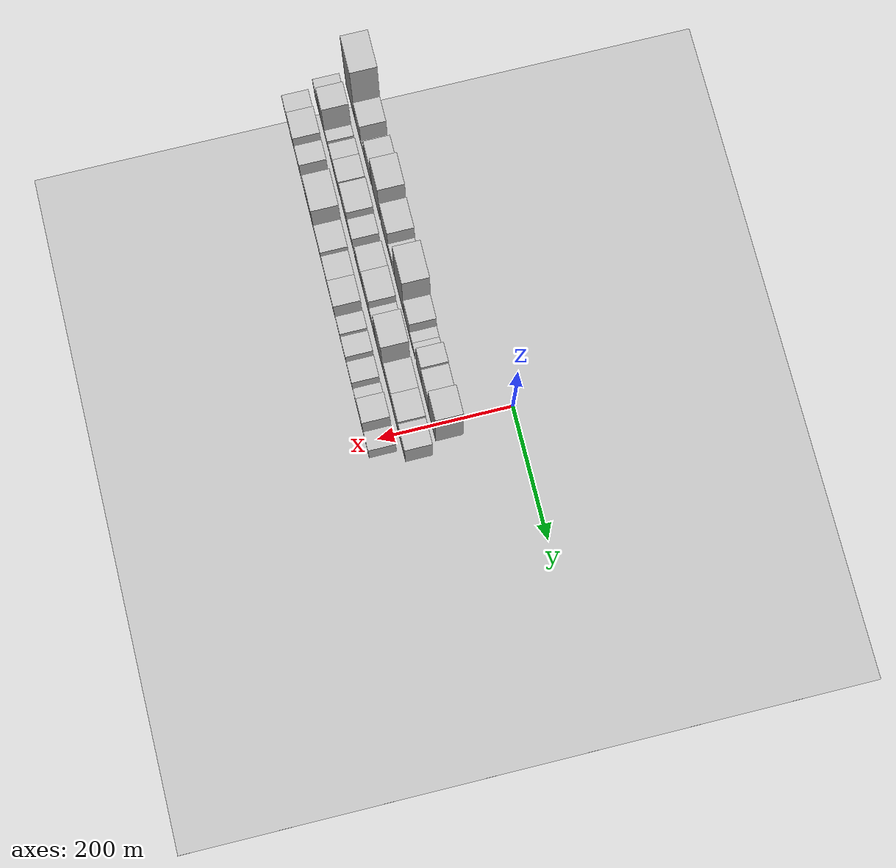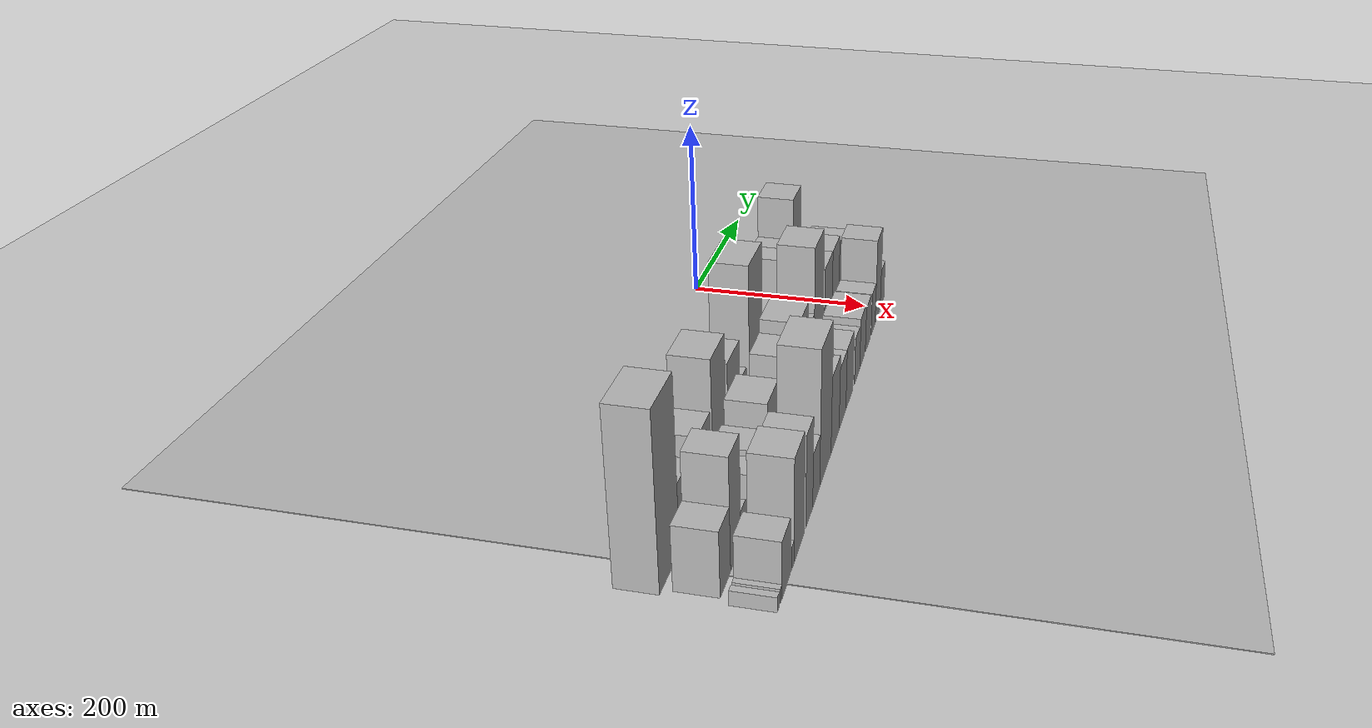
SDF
<sdf version="1.6">
 <world name="default">
  <include><name>ground_plane_1</name><uri>model://HANNAS_ground_plane</uri></include>
  <include>
   <name>ground_plane_2</name>
   <uri>model://HANNAS_ground_plane</uri>
   <pose>100 0 0  0 0 0</pose>
  </include>
  <model name="building_1">
   <static>1</static>
   <pose>100.0000 -507.1463 0 0.000000 0.000000 0.000000</pose>
   <link name="link">
    <pose>0 0 88.50 0 0 0</pose>
    <collision name="collision"><geometry><box><size>40.0000 57.7073 177.0000</size></box></geometry></collision>
    <visual name="visual">
     <cast_shadows>0</cast_shadows>
     <geometry><box><size>40.0000 57.7073 177.0000</size></box></geometry>
     <material>
      <script>
       <uri>model://HANNAS_wall/materials/scripts</uri>
       <uri>model://HANNAS_wall/materials/textures</uri>
       <name>vrc/HANNAS_wall</name>
      </script>
     </material>
    </visual>
   </link>
  </model>
  <model name="building_2">
   <static>1</static>
   <pose>100.0000 -458.8151 0 0.000000 0.000000 0.000000</pose>
   <link name="link">
    <pose>0 0 34.50 0 0 0</pose>
    <collision name="collision"><geometry><box><size>40.0000 38.9551 69.0000</size></box></geometry></collision>
    <visual name="visual">
     <cast_shadows>0</cast_shadows>
     <geometry><box><size>40.0000 38.9551 69.0000</size></box></geometry>
     <material>
      <script>
       <uri>model://HANNAS_wall/materials/scripts</uri>
       <uri>model://HANNAS_wall/materials/textures</uri>
       <name>vrc/HANNAS_wall</name>
      </script>
     </material>
    </visual>
   </link>
  </model>
  <model name="building_3">
   <static>1</static>
   <pose>100.0000 -436.0091 0 0.000000 0.000000 0.000000</pose>
   <link name="link">
    <pose>0 0 7.50 0 0 0</pose>
    <collision name="collision"><geometry><box><size>40.0000 6.6569 15.0000</size></box></geometry></collision>
    <visual name="visual">
     <cast_shadows>0</cast_shadows>
     <geometry><box><size>40.0000 6.6569 15.0000</size></box></geometry>
     <material>
      <script>
       <uri>model://HANNAS_wall/materials/scripts</uri>
       <uri>model://HANNAS_wall/materials/textures</uri>
       <name>vrc/HANNAS_wall</name>
      </script>
     </material>
    </visual>
   </link>
  </model>
  <model name="building_4">
   <static>1</static>
   <pose>100.0000 -427.6124 0 0.000000 0.000000 0.000000</pose>
   <link name="link">
    <pose>0 0 12.00 0 0 0</pose>
    <collision name="collision"><geometry><box><size>40.0000 10.1366 24.0000</size></box></geometry></collision>
    <visual name="visual">
     <cast_shadows>0</cast_shadows>
     <geometry><box><size>40.0000 10.1366 24.0000</size></box></geometry>
     <material>
      <script>
       <uri>model://HANNAS_wall/materials/scripts</uri>
       <uri>model://HANNAS_wall/materials/textures</uri>
       <name>vrc/HANNAS_wall</name>
      </script>
     </material>
    </visual>
   </link>
  </model>
  <model name="building_5">
   <static>1</static>
   <pose>100.0000 -418.8842 0 0.000000 0.000000 0.000000</pose>
   <link name="link">
    <pose>0 0 9.00 0 0 0</pose>
    <collision name="collision"><geometry><box><size>40.0000 7.3197 18.0000</size></box></geometry></collision>
    <visual name="visual">
     <cast_shadows>0</cast_shadows>
     <geometry><box><size>40.0000 7.3197 18.0000</size></box></geometry>
     <material>
      <script>
       <uri>model://HANNAS_wall/materials/scripts</uri>
       <uri>model://HANNAS_wall/materials/textures</uri>
       <name>vrc/HANNAS_wall</name>
      </script>
     </material>
    </visual>
   </link>
  </model>
  <model name="building_6">
   <static>1</static>
   <pose>100.0000 -394.3049 0 0.000000 0.000000 0.000000</pose>
   <link name="link">
    <pose>0 0 37.50 0 0 0</pose>
    <collision name="collision"><geometry><box><size>40.0000 41.8389 75.0000</size></box></geometry></collision>
    <visual name="visual">
     <cast_shadows>0</cast_shadows>
     <geometry><box><size>40.0000 41.8389 75.0000</size></box></geometry>
     <material>
      <script>
       <uri>model://HANNAS_wall/materials/scripts</uri>
       <uri>model://HANNAS_wall/materials/textures</uri>
       <name>vrc/HANNAS_wall</name>
      </script>
     </material>
    </visual>
   </link>
  </model>
  <model name="building_7">
   <static>1</static>
   <pose>100.0000 -344.0526 0 0.000000 0.000000 0.000000</pose>
   <link name="link">
    <pose>0 0 63.00 0 0 0</pose>
    <collision name="collision"><geometry><box><size>40.0000 48.6657 126.0000</size></box></geometry></collision>
    <visual name="visual">
     <cast_shadows>0</cast_shadows>
     <geometry><box><size>40.0000 48.6657 126.0000</size></box></geometry>
     <material>
      <script>
       <uri>model://HANNAS_wall/materials/scripts</uri>
       <uri>model://HANNAS_wall/materials/textures</uri>
       <name>vrc/HANNAS_wall</name>
      </script>
     </material>
    </visual>
   </link>
  </model>
  <model name="building_8">
   <static>1</static>
   <pose>100.0000 -289.3071 0 0.000000 0.000000 0.000000</pose>
   <link name="link">
    <pose>0 0 45.00 0 0 0</pose>
    <collision name="collision"><geometry><box><size>40.0000 46.8253 90.0000</size></box></geometry></collision>
    <visual name="visual">
     <cast_shadows>0</cast_shadows>
     <geometry><box><size>40.0000 46.8253 90.0000</size></box></geometry>
     <material>
      <script>
       <uri>model://HANNAS_wall/materials/scripts</uri>
       <uri>model://HANNAS_wall/materials/textures</uri>
       <name>vrc/HANNAS_wall</name>
      </script>
     </material>
    </visual>
   </link>
  </model>
  <model name="building_9">
   <static>1</static>
   <pose>100.0000 -252.6126 0 0.000000 0.000000 0.000000</pose>
   <link name="link">
    <pose>0 0 22.50 0 0 0</pose>
    <collision name="collision"><geometry><box><size>40.0000 26.5637 45.0000</size></box></geometry></collision>
    <visual name="visual">
     <cast_shadows>0</cast_shadows>
     <geometry><box><size>40.0000 26.5637 45.0000</size></box></geometry>
     <material>
      <script>
       <uri>model://HANNAS_wall/materials/scripts</uri>
       <uri>model://HANNAS_wall/materials/textures</uri>
       <name>vrc/HANNAS_wall</name>
      </script>
     </material>
    </visual>
   </link>
  </model>
  <model name="building_10">
   <static>1</static>
   <pose>100.0000 -235.2382 0 0.000000 0.000000 0.000000</pose>
   <link name="link">
    <pose>0 0 9.00 0 0 0</pose>
    <collision name="collision"><geometry><box><size>40.0000 8.1850 18.0000</size></box></geometry></collision>
    <visual name="visual">
     <cast_shadows>0</cast_shadows>
     <geometry><box><size>40.0000 8.1850 18.0000</size></box></geometry>
     <material>
      <script>
       <uri>model://HANNAS_wall/materials/scripts</uri>
       <uri>model://HANNAS_wall/materials/textures</uri>
       <name>vrc/HANNAS_wall</name>
      </script>
     </material>
    </visual>
   </link>
  </model>
  <model name="building_11">
   <static>1</static>
   <pose>100.0000 -199.3745 0 0.000000 0.000000 0.000000</pose>
   <link name="link">
    <pose>0 0 75.00 0 0 0</pose>
    <collision name="collision"><geometry><box><size>40.0000 55.5425 150.0000</size></box></geometry></collision>
    <visual name="visual">
     <cast_shadows>0</cast_shadows>
     <geometry><box><size>40.0000 55.5425 150.0000</size></box></geometry>
     <material>
      <script>
       <uri>model://HANNAS_wall/materials/scripts</uri>
       <uri>model://HANNAS_wall/materials/textures</uri>
       <name>vrc/HANNAS_wall</name>
      </script>
     </material>
    </visual>
   </link>
  </model>
  <model name="building_12">
   <static>1</static>
   <pose>100.0000 -153.1089 0 0.000000 0.000000 0.000000</pose>
   <link name="link">
    <pose>0 0 34.50 0 0 0</pose>
    <collision name="collision"><geometry><box><size>40.0000 36.9888 69.0000</size></box></geometry></collision>
    <visual name="visual">
     <cast_shadows>0</cast_shadows>
     <geometry><box><size>40.0000 36.9888 69.0000</size></box></geometry>
     <material>
      <script>
       <uri>model://HANNAS_wall/materials/scripts</uri>
       <uri>model://HANNAS_wall/materials/textures</uri>
       <name>vrc/HANNAS_wall</name>
      </script>
     </material>
    </visual>
   </link>
  </model>
  <model name="building_13">
   <static>1</static>
   <pose>100.0000 -126.3114 0 0.000000 0.000000 0.000000</pose>
   <link name="link">
    <pose>0 0 15.00 0 0 0</pose>
    <collision name="collision"><geometry><box><size>40.0000 16.6062 30.0000</size></box></geometry></collision>
    <visual name="visual">
     <cast_shadows>0</cast_shadows>
     <geometry><box><size>40.0000 16.6062 30.0000</size></box></geometry>
     <material>
      <script>
       <uri>model://HANNAS_wall/materials/scripts</uri>
       <uri>model://HANNAS_wall/materials/textures</uri>
       <name>vrc/HANNAS_wall</name>
      </script>
     </material>
    </visual>
   </link>
  </model>
  <model name="building_14">
   <static>1</static>
   <pose>100.0000 -110.0389 0 0.000000 0.000000 0.000000</pose>
   <link name="link">
    <pose>0 0 15.00 0 0 0</pose>
    <collision name="collision"><geometry><box><size>40.0000 15.9388 30.0000</size></box></geometry></collision>
    <visual name="visual">
     <cast_shadows>0</cast_shadows>
     <geometry><box><size>40.0000 15.9388 30.0000</size></box></geometry>
     <material>
      <script>
       <uri>model://HANNAS_wall/materials/scripts</uri>
       <uri>model://HANNAS_wall/materials/textures</uri>
       <name>vrc/HANNAS_wall</name>
      </script>
     </material>
    </visual>
   </link>
  </model>
  <model name="building_15">
   <static>1</static>
   <pose>100.0000 -78.3775 0 0.000000 0.000000 0.000000</pose>
   <link name="link">
    <pose>0 0 46.50 0 0 0</pose>
    <collision name="collision"><geometry><box><size>40.0000 29.3840 93.0000</size></box></geometry></collision>
    <visual name="visual">
     <cast_shadows>0</cast_shadows>
     <geometry><box><size>40.0000 29.3840 93.0000</size></box></geometry>
     <material>
      <script>
       <uri>model://HANNAS_wall/materials/scripts</uri>
       <uri>model://HANNAS_wall/materials/textures</uri>
       <name>vrc/HANNAS_wall</name>
      </script>
     </material>
    </visual>
   </link>
  </model>
  <model name="building_16">
   <static>1</static>
   <pose>100.0000 -41.8981 0 0.000000 0.000000 0.000000</pose>
   <link name="link">
    <pose>0 0 42.00 0 0 0</pose>
    <collision name="collision"><geometry><box><size>40.0000 43.5748 84.0000</size></box></geometry></collision>
    <visual name="visual">
     <cast_shadows>0</cast_shadows>
     <geometry><box><size>40.0000 43.5748 84.0000</size></box></geometry>
     <material>
      <script>
       <uri>model://HANNAS_wall/materials/scripts</uri>
       <uri>model://HANNAS_wall/materials/textures</uri>
       <name>vrc/HANNAS_wall</name>
      </script>
     </material>
    </visual>
   </link>
  </model>
  <model name="building_17">
   <static>1</static>
   <pose>100.0000 1.3072 0 0.000000 0.000000 0.000000</pose>
   <link name="link">
    <pose>0 0 66.00 0 0 0</pose>
    <collision name="collision"><geometry><box><size>40.0000 42.8359 132.0000</size></box></geometry></collision>
    <visual name="visual">
     <cast_shadows>0</cast_shadows>
     <geometry><box><size>40.0000 42.8359 132.0000</size></box></geometry>
     <material>
      <script>
       <uri>model://HANNAS_wall/materials/scripts</uri>
       <uri>model://HANNAS_wall/materials/textures</uri>
       <name>vrc/HANNAS_wall</name>
      </script>
     </material>
    </visual>
   </link>
  </model>
  <model name="building_34">
   <static>1</static>
   <pose>149.0000 -512.0052 0 0.000000 0.000000 0.000000</pose>
   <link name="link">
    <pose>0 0 33.00 0 0 0</pose>
    <collision name="collision"><geometry><box><size>40.0000 33.9897 66.0000</size></box></geometry></collision>
    <visual name="visual">
     <cast_shadows>0</cast_shadows>
     <geometry><box><size>40.0000 33.9897 66.0000</size></box></geometry>
     <material>
      <script>
       <uri>model://HANNAS_wall/materials/scripts</uri>
       <uri>model://HANNAS_wall/materials/textures</uri>
       <name>vrc/HANNAS_wall</name>
      </script>
     </material>
    </visual>
   </link>
  </model>
  <model name="building_35">
   <static>1</static>
   <pose>149.0000 -477.4012 0 0.000000 0.000000 0.000000</pose>
   <link name="link">
    <pose>0 0 57.00 0 0 0</pose>
    <collision name="collision"><geometry><box><size>40.0000 35.2183 114.0000</size></box></geometry></collision>
    <visual name="visual">
     <cast_shadows>0</cast_shadows>
     <geometry><box><size>40.0000 35.2183 114.0000</size></box></geometry>
     <material>
      <script>
       <uri>model://HANNAS_wall/materials/scripts</uri>
       <uri>model://HANNAS_wall/materials/textures</uri>
       <name>vrc/HANNAS_wall</name>
      </script>
     </material>
    </visual>
   </link>
  </model>
  <model name="building_36">
   <static>1</static>
   <pose>149.0000 -450.6664 0 0.000000 0.000000 0.000000</pose>
   <link name="link">
    <pose>0 0 18.00 0 0 0</pose>
    <collision name="collision"><geometry><box><size>40.0000 18.2512 36.0000</size></box></geometry></collision>
    <visual name="visual">
     <cast_shadows>0</cast_shadows>
     <geometry><box><size>40.0000 18.2512 36.0000</size></box></geometry>
     <material>
      <script>
       <uri>model://HANNAS_wall/materials/scripts</uri>
       <uri>model://HANNAS_wall/materials/textures</uri>
       <name>vrc/HANNAS_wall</name>
      </script>
     </material>
    </visual>
   </link>
  </model>
  <model name="building_37">
   <static>1</static>
   <pose>149.0000 -417.6614 0 0.000000 0.000000 0.000000</pose>
   <link name="link">
    <pose>0 0 27.00 0 0 0</pose>
    <collision name="collision"><geometry><box><size>40.0000 27.7589 54.0000</size></box></geometry></collision>
    <visual name="visual">
     <cast_shadows>0</cast_shadows>
     <geometry><box><size>40.0000 27.7589 54.0000</size></box></geometry>
     <material>
      <script>
       <uri>model://HANNAS_wall/materials/scripts</uri>
       <uri>model://HANNAS_wall/materials/textures</uri>
       <name>vrc/HANNAS_wall</name>
      </script>
     </material>
    </visual>
   </link>
  </model>
  <model name="building_38">
   <static>1</static>
   <pose>149.0000 -385.9772 0 0.000000 0.000000 0.000000</pose>
   <link name="link">
    <pose>0 0 30.00 0 0 0</pose>
    <collision name="collision"><geometry><box><size>40.0000 35.6096 60.0000</size></box></geometry></collision>
    <visual name="visual">
     <cast_shadows>0</cast_shadows>
     <geometry><box><size>40.0000 35.6096 60.0000</size></box></geometry>
     <material>
      <script>
       <uri>model://HANNAS_wall/materials/scripts</uri>
       <uri>model://HANNAS_wall/materials/textures</uri>
       <name>vrc/HANNAS_wall</name>
      </script>
     </material>
    </visual>
   </link>
  </model>
  <model name="building_39">
   <static>1</static>
   <pose>149.0000 -336.1917 0 0.000000 0.000000 0.000000</pose>
   <link name="link">
    <pose>0 0 40.50 0 0 0</pose>
    <collision name="collision"><geometry><box><size>40.0000 45.9613 81.0000</size></box></geometry></collision>
    <visual name="visual">
     <cast_shadows>0</cast_shadows>
     <geometry><box><size>40.0000 45.9613 81.0000</size></box></geometry>
     <material>
      <script>
       <uri>model://HANNAS_wall/materials/scripts</uri>
       <uri>model://HANNAS_wall/materials/textures</uri>
       <name>vrc/HANNAS_wall</name>
      </script>
     </material>
    </visual>
   </link>
  </model>
  <model name="building_40">
   <static>1</static>
   <pose>149.0000 -297.3980 0 0.000000 0.000000 0.000000</pose>
   <link name="link">
    <pose>0 0 27.00 0 0 0</pose>
    <collision name="collision"><geometry><box><size>40.0000 31.6261 54.0000</size></box></geometry></collision>
    <visual name="visual">
     <cast_shadows>0</cast_shadows>
     <geometry><box><size>40.0000 31.6261 54.0000</size></box></geometry>
     <material>
      <script>
       <uri>model://HANNAS_wall/materials/scripts</uri>
       <uri>model://HANNAS_wall/materials/textures</uri>
       <name>vrc/HANNAS_wall</name>
      </script>
     </material>
    </visual>
   </link>
  </model>
  <model name="building_41">
   <static>1</static>
   <pose>149.0000 -269.5766 0 0.000000 0.000000 0.000000</pose>
   <link name="link">
    <pose>0 0 13.50 0 0 0</pose>
    <collision name="collision"><geometry><box><size>40.0000 12.0168 27.0000</size></box></geometry></collision>
    <visual name="visual">
     <cast_shadows>0</cast_shadows>
     <geometry><box><size>40.0000 12.0168 27.0000</size></box></geometry>
     <material>
      <script>
       <uri>model://HANNAS_wall/materials/scripts</uri>
       <uri>model://HANNAS_wall/materials/textures</uri>
       <name>vrc/HANNAS_wall</name>
      </script>
     </material>
    </visual>
   </link>
  </model>
  <model name="building_42">
   <static>1</static>
   <pose>149.0000 -242.2615 0 0.000000 0.000000 0.000000</pose>
   <link name="link">
    <pose>0 0 37.50 0 0 0</pose>
    <collision name="collision"><geometry><box><size>40.0000 42.6134 75.0000</size></box></geometry></collision>
    <visual name="visual">
     <cast_shadows>0</cast_shadows>
     <geometry><box><size>40.0000 42.6134 75.0000</size></box></geometry>
     <material>
      <script>
       <uri>model://HANNAS_wall/materials/scripts</uri>
       <uri>model://HANNAS_wall/materials/textures</uri>
       <name>vrc/HANNAS_wall</name>
      </script>
     </material>
    </visual>
   </link>
  </model>
  <model name="building_43">
   <static>1</static>
   <pose>149.0000 -197.9047 0 0.000000 0.000000 0.000000</pose>
   <link name="link">
    <pose>0 0 45.00 0 0 0</pose>
    <collision name="collision"><geometry><box><size>40.0000 46.1002 90.0000</size></box></geometry></collision>
    <visual name="visual">
     <cast_shadows>0</cast_shadows>
     <geometry><box><size>40.0000 46.1002 90.0000</size></box></geometry>
     <material>
      <script>
       <uri>model://HANNAS_wall/materials/scripts</uri>
       <uri>model://HANNAS_wall/materials/textures</uri>
       <name>vrc/HANNAS_wall</name>
      </script>
     </material>
    </visual>
   </link>
  </model>
  <model name="building_44">
   <static>1</static>
   <pose>149.0000 -158.5777 0 0.000000 0.000000 0.000000</pose>
   <link name="link">
    <pose>0 0 30.00 0 0 0</pose>
    <collision name="collision"><geometry><box><size>40.0000 32.5539 60.0000</size></box></geometry></collision>
    <visual name="visual">
     <cast_shadows>0</cast_shadows>
     <geometry><box><size>40.0000 32.5539 60.0000</size></box></geometry>
     <material>
      <script>
       <uri>model://HANNAS_wall/materials/scripts</uri>
       <uri>model://HANNAS_wall/materials/textures</uri>
       <name>vrc/HANNAS_wall</name>
      </script>
     </material>
    </visual>
   </link>
  </model>
  <model name="building_45">
   <static>1</static>
   <pose>149.0000 -118.1655 0 0.000000 0.000000 0.000000</pose>
   <link name="link">
    <pose>0 0 67.50 0 0 0</pose>
    <collision name="collision"><geometry><box><size>40.0000 48.2704 135.0000</size></box></geometry></collision>
    <visual name="visual">
     <cast_shadows>0</cast_shadows>
     <geometry><box><size>40.0000 48.2704 135.0000</size></box></geometry>
     <material>
      <script>
       <uri>model://HANNAS_wall/materials/scripts</uri>
       <uri>model://HANNAS_wall/materials/textures</uri>
       <name>vrc/HANNAS_wall</name>
      </script>
     </material>
    </visual>
   </link>
  </model>
  <model name="building_46">
   <static>1</static>
   <pose>149.0000 -89.8084 0 0.000000 0.000000 0.000000</pose>
   <link name="link">
    <pose>0 0 9.00 0 0 0</pose>
    <collision name="collision"><geometry><box><size>40.0000 8.4438 18.0000</size></box></geometry></collision>
    <visual name="visual">
     <cast_shadows>0</cast_shadows>
     <geometry><box><size>40.0000 8.4438 18.0000</size></box></geometry>
     <material>
      <script>
       <uri>model://HANNAS_wall/materials/scripts</uri>
       <uri>model://HANNAS_wall/materials/textures</uri>
       <name>vrc/HANNAS_wall</name>
      </script>
     </material>
    </visual>
   </link>
  </model>
  <model name="building_47">
   <static>1</static>
   <pose>149.0000 -62.8311 0 0.000000 0.000000 0.000000</pose>
   <link name="link">
    <pose>0 0 42.00 0 0 0</pose>
    <collision name="collision"><geometry><box><size>40.0000 45.5107 84.0000</size></box></geometry></collision>
    <visual name="visual">
     <cast_shadows>0</cast_shadows>
     <geometry><box><size>40.0000 45.5107 84.0000</size></box></geometry>
     <material>
      <script>
       <uri>model://HANNAS_wall/materials/scripts</uri>
       <uri>model://HANNAS_wall/materials/textures</uri>
       <name>vrc/HANNAS_wall</name>
      </script>
     </material>
    </visual>
   </link>
  </model>
  <model name="building_48">
   <static>1</static>
   <pose>149.0000 -19.0212 0 0.000000 0.000000 0.000000</pose>
   <link name="link">
    <pose>0 0 42.00 0 0 0</pose>
    <collision name="collision"><geometry><box><size>40.0000 42.1091 84.0000</size></box></geometry></collision>
    <visual name="visual">
     <cast_shadows>0</cast_shadows>
     <geometry><box><size>40.0000 42.1091 84.0000</size></box></geometry>
     <material>
      <script>
       <uri>model://HANNAS_wall/materials/scripts</uri>
       <uri>model://HANNAS_wall/materials/textures</uri>
       <name>vrc/HANNAS_wall</name>
      </script>
     </material>
    </visual>
   </link>
  </model>
  <model name="building_49">
   <static>1</static>
   <pose>149.0000 21.7848 0 0.000000 0.000000 0.000000</pose>
   <link name="link">
    <pose>0 0 37.50 0 0 0</pose>
    <collision name="collision"><geometry><box><size>40.0000 39.5030 75.0000</size></box></geometry></collision>
    <visual name="visual">
     <cast_shadows>0</cast_shadows>
     <geometry><box><size>40.0000 39.5030 75.0000</size></box></geometry>
     <material>
      <script>
       <uri>model://HANNAS_wall/materials/scripts</uri>
       <uri>model://HANNAS_wall/materials/textures</uri>
       <name>vrc/HANNAS_wall</name>
      </script>
     </material>
    </visual>
   </link>
  </model>
  <model name="building_68">
   <static>1</static>
   <pose>198.0000 -532.2611 0 0.000000 0.000000 0.000000</pose>
   <link name="link">
    <pose>0 0 7.50 0 0 0</pose>
    <collision name="collision"><geometry><box><size>40.0000 7.4777 15.0000</size></box></geometry></collision>
    <visual name="visual">
     <cast_shadows>0</cast_shadows>
     <geometry><box><size>40.0000 7.4777 15.0000</size></box></geometry>
     <material>
      <script>
       <uri>model://HANNAS_wall/materials/scripts</uri>
       <uri>model://HANNAS_wall/materials/textures</uri>
       <name>vrc/HANNAS_wall</name>
      </script>
     </material>
    </visual>
   </link>
  </model>
  <model name="building_69">
   <static>1</static>
   <pose>198.0000 -522.3726 0 0.000000 0.000000 0.000000</pose>
   <link name="link">
    <pose>0 0 7.50 0 0 0</pose>
    <collision name="collision"><geometry><box><size>40.0000 6.2995 15.0000</size></box></geometry></collision>
    <visual name="visual">
     <cast_shadows>0</cast_shadows>
     <geometry><box><size>40.0000 6.2995 15.0000</size></box></geometry>
     <material>
      <script>
       <uri>model://HANNAS_wall/materials/scripts</uri>
       <uri>model://HANNAS_wall/materials/textures</uri>
       <name>vrc/HANNAS_wall</name>
      </script>
     </material>
    </visual>
   </link>
  </model>
  <model name="building_70">
   <static>1</static>
   <pose>198.0000 -502.9611 0 0.000000 0.000000 0.000000</pose>
   <link name="link">
    <pose>0 0 28.50 0 0 0</pose>
    <collision name="collision"><geometry><box><size>40.0000 32.5234 57.0000</size></box></geometry></collision>
    <visual name="visual">
     <cast_shadows>0</cast_shadows>
     <geometry><box><size>40.0000 32.5234 57.0000</size></box></geometry>
     <material>
      <script>
       <uri>model://HANNAS_wall/materials/scripts</uri>
       <uri>model://HANNAS_wall/materials/textures</uri>
       <name>vrc/HANNAS_wall</name>
      </script>
     </material>
    </visual>
   </link>
  </model>
  <model name="building_71">
   <static>1</static>
   <pose>198.0000 -477.6270 0 0.000000 0.000000 0.000000</pose>
   <link name="link">
    <pose>0 0 12.00 0 0 0</pose>
    <collision name="collision"><geometry><box><size>40.0000 10.1450 24.0000</size></box></geometry></collision>
    <visual name="visual">
     <cast_shadows>0</cast_shadows>
     <geometry><box><size>40.0000 10.1450 24.0000</size></box></geometry>
     <material>
      <script>
       <uri>model://HANNAS_wall/materials/scripts</uri>
       <uri>model://HANNAS_wall/materials/textures</uri>
       <name>vrc/HANNAS_wall</name>
      </script>
     </material>
    </visual>
   </link>
  </model>
  <model name="building_72">
   <static>1</static>
   <pose>198.0000 -451.7815 0 0.000000 0.000000 0.000000</pose>
   <link name="link">
    <pose>0 0 52.50 0 0 0</pose>
    <collision name="collision"><geometry><box><size>40.0000 41.5459 105.0000</size></box></geometry></collision>
    <visual name="visual">
     <cast_shadows>0</cast_shadows>
     <geometry><box><size>40.0000 41.5459 105.0000</size></box></geometry>
     <material>
      <script>
       <uri>model://HANNAS_wall/materials/scripts</uri>
       <uri>model://HANNAS_wall/materials/textures</uri>
       <name>vrc/HANNAS_wall</name>
      </script>
     </material>
    </visual>
   </link>
  </model>
  <model name="building_73">
   <static>1</static>
   <pose>198.0000 -408.5668 0 0.000000 0.000000 0.000000</pose>
   <link name="link">
    <pose>0 0 48.00 0 0 0</pose>
    <collision name="collision"><geometry><box><size>40.0000 30.8835 96.0000</size></box></geometry></collision>
    <visual name="visual">
     <cast_shadows>0</cast_shadows>
     <geometry><box><size>40.0000 30.8835 96.0000</size></box></geometry>
     <material>
      <script>
       <uri>model://HANNAS_wall/materials/scripts</uri>
       <uri>model://HANNAS_wall/materials/textures</uri>
       <name>vrc/HANNAS_wall</name>
      </script>
     </material>
    </visual>
   </link>
  </model>
  <model name="building_74">
   <static>1</static>
   <pose>198.0000 -376.9724 0 0.000000 0.000000 0.000000</pose>
   <link name="link">
    <pose>0 0 28.50 0 0 0</pose>
    <collision name="collision"><geometry><box><size>40.0000 32.3055 57.0000</size></box></geometry></collision>
    <visual name="visual">
     <cast_shadows>0</cast_shadows>
     <geometry><box><size>40.0000 32.3055 57.0000</size></box></geometry>
     <material>
      <script>
       <uri>model://HANNAS_wall/materials/scripts</uri>
       <uri>model://HANNAS_wall/materials/textures</uri>
       <name>vrc/HANNAS_wall</name>
      </script>
     </material>
    </visual>
   </link>
  </model>
  <model name="building_75">
   <static>1</static>
   <pose>198.0000 -333.1834 0 0.000000 0.000000 0.000000</pose>
   <link name="link">
    <pose>0 0 72.00 0 0 0</pose>
    <collision name="collision"><geometry><box><size>40.0000 55.2725 144.0000</size></box></geometry></collision>
    <visual name="visual">
     <cast_shadows>0</cast_shadows>
     <geometry><box><size>40.0000 55.2725 144.0000</size></box></geometry>
     <material>
      <script>
       <uri>model://HANNAS_wall/materials/scripts</uri>
       <uri>model://HANNAS_wall/materials/textures</uri>
       <name>vrc/HANNAS_wall</name>
      </script>
     </material>
    </visual>
   </link>
  </model>
  <model name="building_76">
   <static>1</static>
   <pose>198.0000 -284.3807 0 0.000000 0.000000 0.000000</pose>
   <link name="link">
    <pose>0 0 42.00 0 0 0</pose>
    <collision name="collision"><geometry><box><size>40.0000 42.3328 84.0000</size></box></geometry></collision>
    <visual name="visual">
     <cast_shadows>0</cast_shadows>
     <geometry><box><size>40.0000 42.3328 84.0000</size></box></geometry>
     <material>
      <script>
       <uri>model://HANNAS_wall/materials/scripts</uri>
       <uri>model://HANNAS_wall/materials/textures</uri>
       <name>vrc/HANNAS_wall</name>
      </script>
     </material>
    </visual>
   </link>
  </model>
  <model name="building_77">
   <static>1</static>
   <pose>198.0000 -244.5706 0 0.000000 0.000000 0.000000</pose>
   <link name="link">
    <pose>0 0 34.50 0 0 0</pose>
    <collision name="collision"><geometry><box><size>40.0000 37.2874 69.0000</size></box></geometry></collision>
    <visual name="visual">
     <cast_shadows>0</cast_shadows>
     <geometry><box><size>40.0000 37.2874 69.0000</size></box></geometry>
     <material>
      <script>
       <uri>model://HANNAS_wall/materials/scripts</uri>
       <uri>model://HANNAS_wall/materials/textures</uri>
       <name>vrc/HANNAS_wall</name>
      </script>
     </material>
    </visual>
   </link>
  </model>
  <model name="building_78">
   <static>1</static>
   <pose>198.0000 -205.9246 0 0.000000 0.000000 0.000000</pose>
   <link name="link">
    <pose>0 0 34.50 0 0 0</pose>
    <collision name="collision"><geometry><box><size>40.0000 40.0048 69.0000</size></box></geometry></collision>
    <visual name="visual">
     <cast_shadows>0</cast_shadows>
     <geometry><box><size>40.0000 40.0048 69.0000</size></box></geometry>
     <material>
      <script>
       <uri>model://HANNAS_wall/materials/scripts</uri>
       <uri>model://HANNAS_wall/materials/textures</uri>
       <name>vrc/HANNAS_wall</name>
      </script>
     </material>
    </visual>
   </link>
  </model>
  <model name="building_79">
   <static>1</static>
   <pose>198.0000 -162.3074 0 0.000000 0.000000 0.000000</pose>
   <link name="link">
    <pose>0 0 27.00 0 0 0</pose>
    <collision name="collision"><geometry><box><size>40.0000 27.2295 54.0000</size></box></geometry></collision>
    <visual name="visual">
     <cast_shadows>0</cast_shadows>
     <geometry><box><size>40.0000 27.2295 54.0000</size></box></geometry>
     <material>
      <script>
       <uri>model://HANNAS_wall/materials/scripts</uri>
       <uri>model://HANNAS_wall/materials/textures</uri>
       <name>vrc/HANNAS_wall</name>
      </script>
     </material>
    </visual>
   </link>
  </model>
  <model name="building_80">
   <static>1</static>
   <pose>198.0000 -128.1673 0 0.000000 0.000000 0.000000</pose>
   <link name="link">
    <pose>0 0 30.00 0 0 0</pose>
    <collision name="collision"><geometry><box><size>40.0000 31.0507 60.0000</size></box></geometry></collision>
    <visual name="visual">
     <cast_shadows>0</cast_shadows>
     <geometry><box><size>40.0000 31.0507 60.0000</size></box></geometry>
     <material>
      <script>
       <uri>model://HANNAS_wall/materials/scripts</uri>
       <uri>model://HANNAS_wall/materials/textures</uri>
       <name>vrc/HANNAS_wall</name>
      </script>
     </material>
    </visual>
   </link>
  </model>
  <model name="building_81">
   <static>1</static>
   <pose>198.0000 -91.5865 0 0.000000 0.000000 0.000000</pose>
   <link name="link">
    <pose>0 0 27.00 0 0 0</pose>
    <collision name="collision"><geometry><box><size>40.0000 32.1107 54.0000</size></box></geometry></collision>
    <visual name="visual">
     <cast_shadows>0</cast_shadows>
     <geometry><box><size>40.0000 32.1107 54.0000</size></box></geometry>
     <material>
      <script>
       <uri>model://HANNAS_wall/materials/scripts</uri>
       <uri>model://HANNAS_wall/materials/textures</uri>
       <name>vrc/HANNAS_wall</name>
      </script>
     </material>
    </visual>
   </link>
  </model>
  <model name="building_82">
   <static>1</static>
   <pose>198.0000 -54.7995 0 0.000000 0.000000 0.000000</pose>
   <link name="link">
    <pose>0 0 25.50 0 0 0</pose>
    <collision name="collision"><geometry><box><size>40.0000 27.4634 51.0000</size></box></geometry></collision>
    <visual name="visual">
     <cast_shadows>0</cast_shadows>
     <geometry><box><size>40.0000 27.4634 51.0000</size></box></geometry>
     <material>
      <script>
       <uri>model://HANNAS_wall/materials/scripts</uri>
       <uri>model://HANNAS_wall/materials/textures</uri>
       <name>vrc/HANNAS_wall</name>
      </script>
     </material>
    </visual>
   </link>
  </model>
  <model name="building_83">
   <static>1</static>
   <pose>198.0000 -22.8405 0 0.000000 0.000000 0.000000</pose>
   <link name="link">
    <pose>0 0 51.00 0 0 0</pose>
    <collision name="collision"><geometry><box><size>40.0000 36.4546 102.0000</size></box></geometry></collision>
    <visual name="visual">
     <cast_shadows>0</cast_shadows>
     <geometry><box><size>40.0000 36.4546 102.0000</size></box></geometry>
     <material>
      <script>
       <uri>model://HANNAS_wall/materials/scripts</uri>
       <uri>model://HANNAS_wall/materials/textures</uri>
       <name>vrc/HANNAS_wall</name>
      </script>
     </material>
    </visual>
   </link>
  </model>
  <model name="building_84">
   <static>1</static>
   <pose>198.0000 9.5781 0 0.000000 0.000000 0.000000</pose>
   <link name="link">
    <pose>0 0 24.00 0 0 0</pose>
    <collision name="collision"><geometry><box><size>40.0000 28.3827 48.0000</size></box></geometry></collision>
    <visual name="visual">
     <cast_shadows>0</cast_shadows>
     <geometry><box><size>40.0000 28.3827 48.0000</size></box></geometry>
     <material>
      <script>
       <uri>model://HANNAS_wall/materials/scripts</uri>
       <uri>model://HANNAS_wall/materials/textures</uri>
       <name>vrc/HANNAS_wall</name>
      </script>
     </material>
    </visual>
   </link>
  </model>
 </world>
</sdf>
